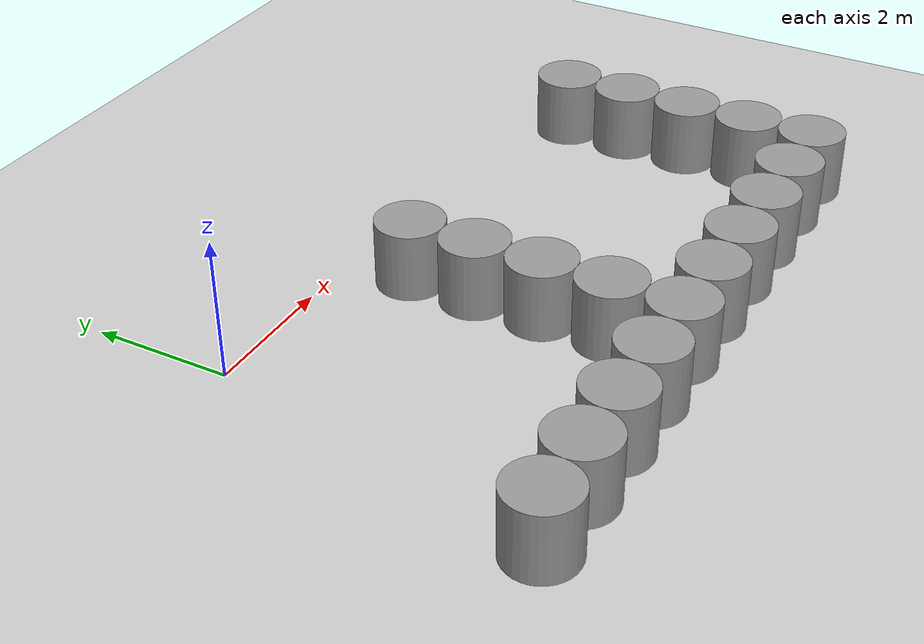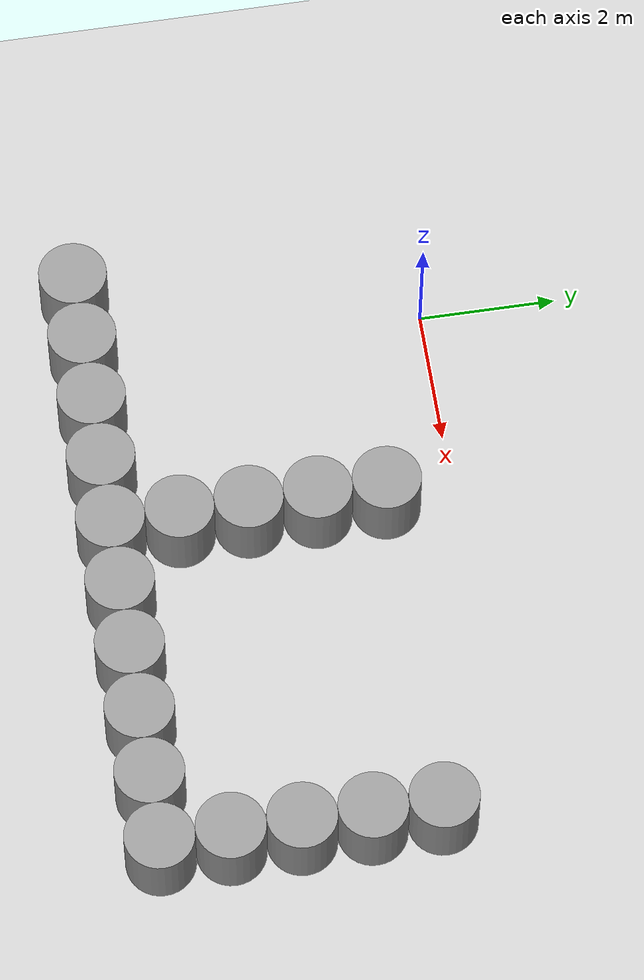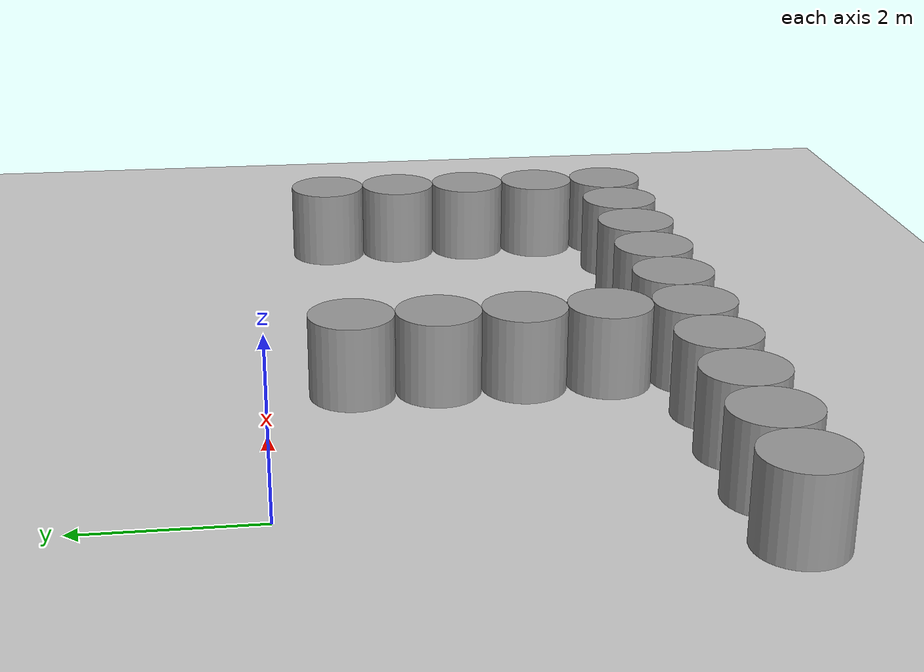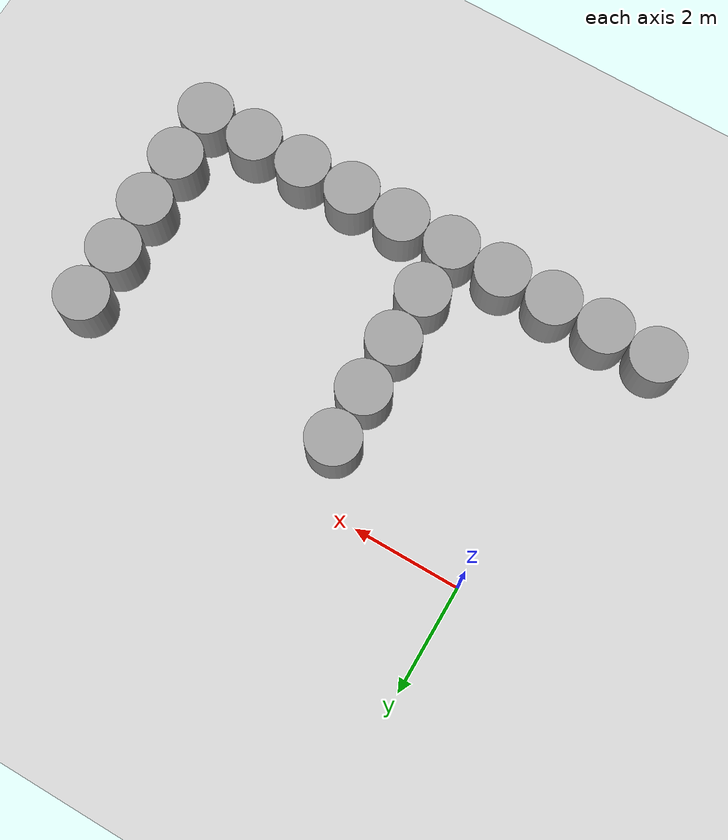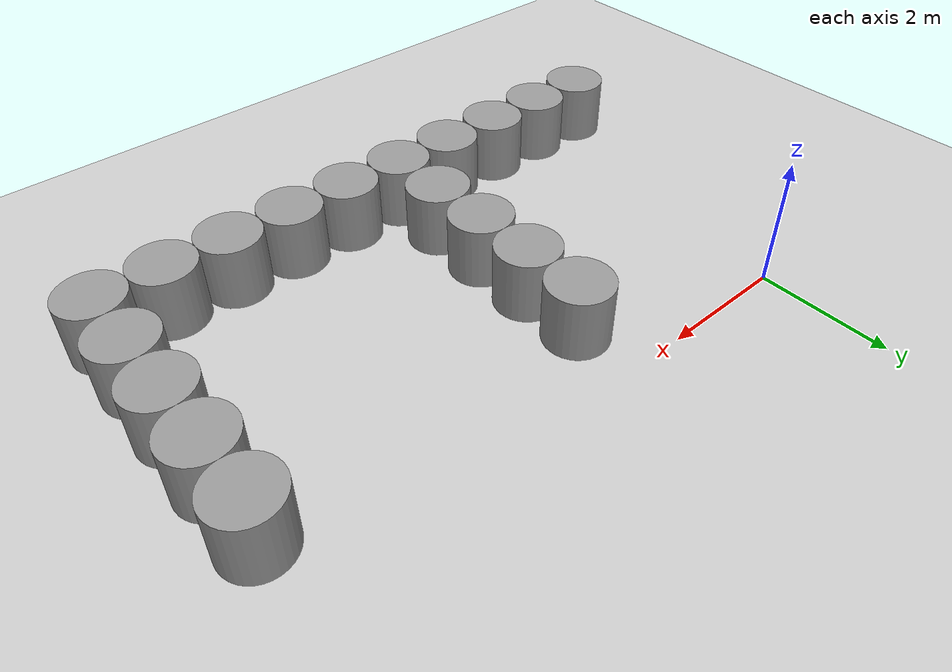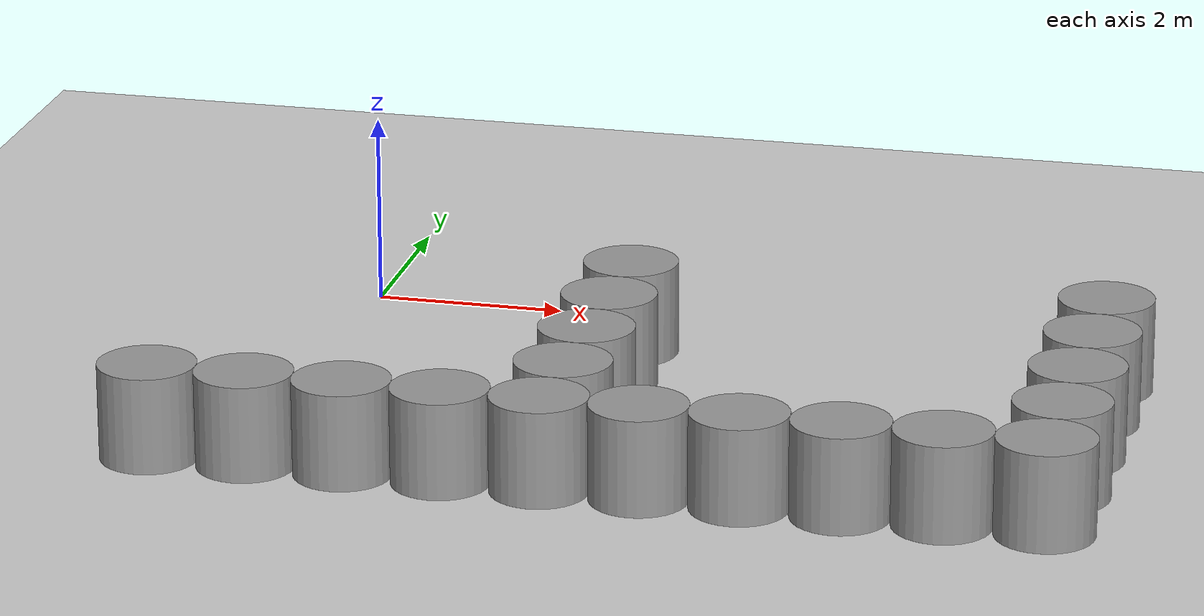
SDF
<sdf version="1.7">
 <world name="default">
  <model name="ground_plane">
   <static>1</static>
   <link name="link">
    <collision name="collision">
     <geometry><plane><normal>0 0 1</normal><size>100 100</size></plane></geometry>
     <surface>
      <contact><collide_bitmask>65535</collide_bitmask></contact>
      <friction><ode><mu>100</mu><mu2>50</mu2></ode></friction>
     </surface>
    </collision>
    <visual name="visual">
     <cast_shadows>0</cast_shadows>
     <geometry><plane><normal>0 0 1</normal><size>100 100</size></plane></geometry>
     <material>
      <script><uri>file://media/materials/scripts/gazebo.material</uri><name>Gazebo/Grey</name></script>
     </material>
    </visual>
   </link>
  </model>
  <model name="cylinder_1m_2_clone_12">
   <model name="cylinder_1m">
    <link name="link_0">
     <inertial>
      <mass>1</mass>
      <inertia>
       <ixx>0.166667</ixx>
       <ixy>0</ixy>
       <ixz>0</ixz>
       <iyy>0.166667</iyy>
       <iyz>0</iyz>
       <izz>0.166667</izz>
      </inertia>
     </inertial>
     <pose>0 0 -0 1.5708 -0 0</pose>
     <visual name="visual">
      <geometry>
       <mesh>
        <uri>/home/leesirius/workbench_ws/src/tb3_custom_worlds/custom_models/cylinder_1m.obj</uri>
        <scale>1 1 1</scale>
       </mesh>
      </geometry>
      <material>
       <lighting>1</lighting>
       <script><uri>file://media/materials/scripts/gazebo.material</uri><name>Gazebo/Grey</name></script>
       <shader type="pixel"/>
      </material>
     </visual>
     <collision name="collision">
      <geometry>
       <mesh>
        <uri>/home/leesirius/workbench_ws/src/tb3_custom_worlds/custom_models/cylinder_1m.obj</uri>
        <scale>1 1 1</scale>
       </mesh>
      </geometry>
      <surface>
       <friction>
        <ode><mu>1</mu><mu2>1</mu2><fdir1>0 0 0</fdir1><slip1>0</slip1><slip2>0</slip2></ode>
        <torsional>
         <coefficient>1</coefficient>
         <patch_radius>0</patch_radius>
         <surface_radius>0</surface_radius>
         <use_patch_radius>1</use_patch_radius>
         <ode><slip>0</slip></ode>
        </torsional>
       </friction>
       <bounce><restitution_coefficient>0</restitution_coefficient><threshold>1e+06</threshold></bounce>
       <contact>
        <collide_without_contact>0</collide_without_contact>
        <collide_without_contact_bitmask>1</collide_without_contact_bitmask>
        <collide_bitmask>1</collide_bitmask>
        <ode>
         <soft_cfm>0</soft_cfm>
         <soft_erp>0.2</soft_erp>
         <kp>1e+13</kp>
         <kd>1</kd>
         <max_vel>0.01</max_vel>
         <min_depth>0</min_depth>
        </ode>
        <bullet>
         <split_impulse>1</split_impulse>
         <split_impulse_penetration_threshold>-0.01</split_impulse_penetration_threshold>
         <soft_cfm>0</soft_cfm>
         <soft_erp>0.2</soft_erp>
         <kp>1e+13</kp>
         <kd>1</kd>
        </bullet>
       </contact>
      </surface>
     </collision>
    </link>
    <static>0</static>
    <pose>0 0 4e-06 0 -0 0</pose>
   </model>
   <static>1</static>
   <pose>-0.999966 -5.00001 0.499996 -5e-06 -3e-06 0.000138</pose>
  </model>
  <model name="cylinder_1m_2_clone_13">
   <model name="cylinder_1m">
    <link name="link_0">
     <inertial>
      <mass>1</mass>
      <inertia>
       <ixx>0.166667</ixx>
       <ixy>0</ixy>
       <ixz>0</ixz>
       <iyy>0.166667</iyy>
       <iyz>0</iyz>
       <izz>0.166667</izz>
      </inertia>
     </inertial>
     <pose>0 0 -0 1.5708 -0 0</pose>
     <visual name="visual">
      <geometry>
       <mesh>
        <uri>/home/leesirius/workbench_ws/src/tb3_custom_worlds/custom_models/cylinder_1m.obj</uri>
        <scale>1 1 1</scale>
       </mesh>
      </geometry>
      <material>
       <lighting>1</lighting>
       <script><uri>file://media/materials/scripts/gazebo.material</uri><name>Gazebo/Grey</name></script>
       <shader type="pixel"/>
      </material>
     </visual>
     <collision name="collision">
      <geometry>
       <mesh>
        <uri>/home/leesirius/workbench_ws/src/tb3_custom_worlds/custom_models/cylinder_1m.obj</uri>
        <scale>1 1 1</scale>
       </mesh>
      </geometry>
      <surface>
       <friction>
        <ode><mu>1</mu><mu2>1</mu2><fdir1>0 0 0</fdir1><slip1>0</slip1><slip2>0</slip2></ode>
        <torsional>
         <coefficient>1</coefficient>
         <patch_radius>0</patch_radius>
         <surface_radius>0</surface_radius>
         <use_patch_radius>1</use_patch_radius>
         <ode><slip>0</slip></ode>
        </torsional>
       </friction>
       <bounce><restitution_coefficient>0</restitution_coefficient><threshold>1e+06</threshold></bounce>
       <contact>
        <collide_without_contact>0</collide_without_contact>
        <collide_without_contact_bitmask>1</collide_without_contact_bitmask>
        <collide_bitmask>1</collide_bitmask>
        <ode>
         <soft_cfm>0</soft_cfm>
         <soft_erp>0.2</soft_erp>
         <kp>1e+13</kp>
         <kd>1</kd>
         <max_vel>0.01</max_vel>
         <min_depth>0</min_depth>
        </ode>
        <bullet>
         <split_impulse>1</split_impulse>
         <split_impulse_penetration_threshold>-0.01</split_impulse_penetration_threshold>
         <soft_cfm>0</soft_cfm>
         <soft_erp>0.2</soft_erp>
         <kp>1e+13</kp>
         <kd>1</kd>
        </bullet>
       </contact>
      </surface>
     </collision>
    </link>
    <static>0</static>
    <pose>0 0 4e-06 0 -0 0</pose>
   </model>
   <static>1</static>
   <pose>2.9e-05 -5.00001 0.499994 -4e-06 -4e-06 0.000131</pose>
  </model>
  <model name="cylinder_1m_2_clone_14">
   <model name="cylinder_1m">
    <link name="link_0">
     <inertial>
      <mass>1</mass>
      <inertia>
       <ixx>0.166667</ixx>
       <ixy>0</ixy>
       <ixz>0</ixz>
       <iyy>0.166667</iyy>
       <iyz>0</iyz>
       <izz>0.166667</izz>
      </inertia>
     </inertial>
     <pose>0 0 -0 1.5708 -0 0</pose>
     <visual name="visual">
      <geometry>
       <mesh>
        <uri>/home/leesirius/workbench_ws/src/tb3_custom_worlds/custom_models/cylinder_1m.obj</uri>
        <scale>1 1 1</scale>
       </mesh>
      </geometry>
      <material>
       <lighting>1</lighting>
       <script><uri>file://media/materials/scripts/gazebo.material</uri><name>Gazebo/Grey</name></script>
       <shader type="pixel"/>
      </material>
     </visual>
     <collision name="collision">
      <geometry>
       <mesh>
        <uri>/home/leesirius/workbench_ws/src/tb3_custom_worlds/custom_models/cylinder_1m.obj</uri>
        <scale>1 1 1</scale>
       </mesh>
      </geometry>
      <surface>
       <friction>
        <ode><mu>1</mu><mu2>1</mu2><fdir1>0 0 0</fdir1><slip1>0</slip1><slip2>0</slip2></ode>
        <torsional>
         <coefficient>1</coefficient>
         <patch_radius>0</patch_radius>
         <surface_radius>0</surface_radius>
         <use_patch_radius>1</use_patch_radius>
         <ode><slip>0</slip></ode>
        </torsional>
       </friction>
       <bounce><restitution_coefficient>0</restitution_coefficient><threshold>1e+06</threshold></bounce>
       <contact>
        <collide_without_contact>0</collide_without_contact>
        <collide_without_contact_bitmask>1</collide_without_contact_bitmask>
        <collide_bitmask>1</collide_bitmask>
        <ode>
         <soft_cfm>0</soft_cfm>
         <soft_erp>0.2</soft_erp>
         <kp>1e+13</kp>
         <kd>1</kd>
         <max_vel>0.01</max_vel>
         <min_depth>0</min_depth>
        </ode>
        <bullet>
         <split_impulse>1</split_impulse>
         <split_impulse_penetration_threshold>-0.01</split_impulse_penetration_threshold>
         <soft_cfm>0</soft_cfm>
         <soft_erp>0.2</soft_erp>
         <kp>1e+13</kp>
         <kd>1</kd>
        </bullet>
       </contact>
      </surface>
     </collision>
    </link>
    <static>0</static>
    <pose>0 0 4e-06 0 -0 0</pose>
   </model>
   <static>1</static>
   <pose>1.00003 -5.00001 0.499995 0 1e-06 0.000138</pose>
  </model>
  <model name="cylinder_1m_2_clone_15">
   <model name="cylinder_1m">
    <link name="link_0">
     <inertial>
      <mass>1</mass>
      <inertia>
       <ixx>0.166667</ixx>
       <ixy>0</ixy>
       <ixz>0</ixz>
       <iyy>0.166667</iyy>
       <iyz>0</iyz>
       <izz>0.166667</izz>
      </inertia>
     </inertial>
     <pose>0 0 -0 1.5708 -0 0</pose>
     <visual name="visual">
      <geometry>
       <mesh>
        <uri>/home/leesirius/workbench_ws/src/tb3_custom_worlds/custom_models/cylinder_1m.obj</uri>
        <scale>1 1 1</scale>
       </mesh>
      </geometry>
      <material>
       <lighting>1</lighting>
       <script><uri>file://media/materials/scripts/gazebo.material</uri><name>Gazebo/Grey</name></script>
       <shader type="pixel"/>
      </material>
     </visual>
     <collision name="collision">
      <geometry>
       <mesh>
        <uri>/home/leesirius/workbench_ws/src/tb3_custom_worlds/custom_models/cylinder_1m.obj</uri>
        <scale>1 1 1</scale>
       </mesh>
      </geometry>
      <surface>
       <friction>
        <ode><mu>1</mu><mu2>1</mu2><fdir1>0 0 0</fdir1><slip1>0</slip1><slip2>0</slip2></ode>
        <torsional>
         <coefficient>1</coefficient>
         <patch_radius>0</patch_radius>
         <surface_radius>0</surface_radius>
         <use_patch_radius>1</use_patch_radius>
         <ode><slip>0</slip></ode>
        </torsional>
       </friction>
       <bounce><restitution_coefficient>0</restitution_coefficient><threshold>1e+06</threshold></bounce>
       <contact>
        <collide_without_contact>0</collide_without_contact>
        <collide_without_contact_bitmask>1</collide_without_contact_bitmask>
        <collide_bitmask>1</collide_bitmask>
        <ode>
         <soft_cfm>0</soft_cfm>
         <soft_erp>0.2</soft_erp>
         <kp>1e+13</kp>
         <kd>1</kd>
         <max_vel>0.01</max_vel>
         <min_depth>0</min_depth>
        </ode>
        <bullet>
         <split_impulse>1</split_impulse>
         <split_impulse_penetration_threshold>-0.01</split_impulse_penetration_threshold>
         <soft_cfm>0</soft_cfm>
         <soft_erp>0.2</soft_erp>
         <kp>1e+13</kp>
         <kd>1</kd>
        </bullet>
       </contact>
      </surface>
     </collision>
    </link>
    <static>0</static>
    <pose>0 0 4e-06 0 -0 0</pose>
   </model>
   <static>1</static>
   <pose>2.00003 -5.00001 0.499995 0 1e-06 0.000138</pose>
  </model>
  <model name="cylinder_1m_2_clone_16">
   <model name="cylinder_1m">
    <link name="link_0">
     <inertial>
      <mass>1</mass>
      <inertia>
       <ixx>0.166667</ixx>
       <ixy>0</ixy>
       <ixz>0</ixz>
       <iyy>0.166667</iyy>
       <iyz>0</iyz>
       <izz>0.166667</izz>
      </inertia>
     </inertial>
     <pose>0 0 -0 1.5708 -0 0</pose>
     <visual name="visual">
      <geometry>
       <mesh>
        <uri>/home/leesirius/workbench_ws/src/tb3_custom_worlds/custom_models/cylinder_1m.obj</uri>
        <scale>1 1 1</scale>
       </mesh>
      </geometry>
      <material>
       <lighting>1</lighting>
       <script><uri>file://media/materials/scripts/gazebo.material</uri><name>Gazebo/Grey</name></script>
       <shader type="pixel"/>
      </material>
     </visual>
     <collision name="collision">
      <geometry>
       <mesh>
        <uri>/home/leesirius/workbench_ws/src/tb3_custom_worlds/custom_models/cylinder_1m.obj</uri>
        <scale>1 1 1</scale>
       </mesh>
      </geometry>
      <surface>
       <friction>
        <ode><mu>1</mu><mu2>1</mu2><fdir1>0 0 0</fdir1><slip1>0</slip1><slip2>0</slip2></ode>
        <torsional>
         <coefficient>1</coefficient>
         <patch_radius>0</patch_radius>
         <surface_radius>0</surface_radius>
         <use_patch_radius>1</use_patch_radius>
         <ode><slip>0</slip></ode>
        </torsional>
       </friction>
       <bounce><restitution_coefficient>0</restitution_coefficient><threshold>1e+06</threshold></bounce>
       <contact>
        <collide_without_contact>0</collide_without_contact>
        <collide_without_contact_bitmask>1</collide_without_contact_bitmask>
        <collide_bitmask>1</collide_bitmask>
        <ode>
         <soft_cfm>0</soft_cfm>
         <soft_erp>0.2</soft_erp>
         <kp>1e+13</kp>
         <kd>1</kd>
         <max_vel>0.01</max_vel>
         <min_depth>0</min_depth>
        </ode>
        <bullet>
         <split_impulse>1</split_impulse>
         <split_impulse_penetration_threshold>-0.01</split_impulse_penetration_threshold>
         <soft_cfm>0</soft_cfm>
         <soft_erp>0.2</soft_erp>
         <kp>1e+13</kp>
         <kd>1</kd>
        </bullet>
       </contact>
      </surface>
     </collision>
    </link>
    <static>0</static>
    <pose>0 0 4e-06 0 -0 0</pose>
   </model>
   <static>1</static>
   <pose>3.00003 -5.00001 0.499995 0 1e-06 0.000138</pose>
  </model>
  <model name="cylinder_1m_2_clone_17">
   <model name="cylinder_1m">
    <link name="link_0">
     <inertial>
      <mass>1</mass>
      <inertia>
       <ixx>0.166667</ixx>
       <ixy>0</ixy>
       <ixz>0</ixz>
       <iyy>0.166667</iyy>
       <iyz>0</iyz>
       <izz>0.166667</izz>
      </inertia>
     </inertial>
     <pose>0 0 -0 1.5708 -0 0</pose>
     <visual name="visual">
      <geometry>
       <mesh>
        <uri>/home/leesirius/workbench_ws/src/tb3_custom_worlds/custom_models/cylinder_1m.obj</uri>
        <scale>1 1 1</scale>
       </mesh>
      </geometry>
      <material>
       <lighting>1</lighting>
       <script><uri>file://media/materials/scripts/gazebo.material</uri><name>Gazebo/Grey</name></script>
       <shader type="pixel"/>
      </material>
     </visual>
     <collision name="collision">
      <geometry>
       <mesh>
        <uri>/home/leesirius/workbench_ws/src/tb3_custom_worlds/custom_models/cylinder_1m.obj</uri>
        <scale>1 1 1</scale>
       </mesh>
      </geometry>
      <surface>
       <friction>
        <ode><mu>1</mu><mu2>1</mu2><fdir1>0 0 0</fdir1><slip1>0</slip1><slip2>0</slip2></ode>
        <torsional>
         <coefficient>1</coefficient>
         <patch_radius>0</patch_radius>
         <surface_radius>0</surface_radius>
         <use_patch_radius>1</use_patch_radius>
         <ode><slip>0</slip></ode>
        </torsional>
       </friction>
       <bounce><restitution_coefficient>0</restitution_coefficient><threshold>1e+06</threshold></bounce>
       <contact>
        <collide_without_contact>0</collide_without_contact>
        <collide_without_contact_bitmask>1</collide_without_contact_bitmask>
        <collide_bitmask>1</collide_bitmask>
        <ode>
         <soft_cfm>0</soft_cfm>
         <soft_erp>0.2</soft_erp>
         <kp>1e+13</kp>
         <kd>1</kd>
         <max_vel>0.01</max_vel>
         <min_depth>0</min_depth>
        </ode>
        <bullet>
         <split_impulse>1</split_impulse>
         <split_impulse_penetration_threshold>-0.01</split_impulse_penetration_threshold>
         <soft_cfm>0</soft_cfm>
         <soft_erp>0.2</soft_erp>
         <kp>1e+13</kp>
         <kd>1</kd>
        </bullet>
       </contact>
      </surface>
     </collision>
    </link>
    <static>0</static>
    <pose>0 0 4e-06 0 -0 0</pose>
   </model>
   <static>1</static>
   <pose>4.00003 -5.00001 0.499995 0 1e-06 0.000138</pose>
  </model>
  <model name="cylinder_1m_2_clone_18">
   <model name="cylinder_1m">
    <link name="link_0">
     <inertial>
      <mass>1</mass>
      <inertia>
       <ixx>0.166667</ixx>
       <ixy>0</ixy>
       <ixz>0</ixz>
       <iyy>0.166667</iyy>
       <iyz>0</iyz>
       <izz>0.166667</izz>
      </inertia>
     </inertial>
     <pose>0 0 -0 1.5708 -0 0</pose>
     <visual name="visual">
      <geometry>
       <mesh>
        <uri>/home/leesirius/workbench_ws/src/tb3_custom_worlds/custom_models/cylinder_1m.obj</uri>
        <scale>1 1 1</scale>
       </mesh>
      </geometry>
      <material>
       <lighting>1</lighting>
       <script><uri>file://media/materials/scripts/gazebo.material</uri><name>Gazebo/Grey</name></script>
       <shader type="pixel"/>
      </material>
     </visual>
     <collision name="collision">
      <geometry>
       <mesh>
        <uri>/home/leesirius/workbench_ws/src/tb3_custom_worlds/custom_models/cylinder_1m.obj</uri>
        <scale>1 1 1</scale>
       </mesh>
      </geometry>
      <surface>
       <friction>
        <ode><mu>1</mu><mu2>1</mu2><fdir1>0 0 0</fdir1><slip1>0</slip1><slip2>0</slip2></ode>
        <torsional>
         <coefficient>1</coefficient>
         <patch_radius>0</patch_radius>
         <surface_radius>0</surface_radius>
         <use_patch_radius>1</use_patch_radius>
         <ode><slip>0</slip></ode>
        </torsional>
       </friction>
       <bounce><restitution_coefficient>0</restitution_coefficient><threshold>1e+06</threshold></bounce>
       <contact>
        <collide_without_contact>0</collide_without_contact>
        <collide_without_contact_bitmask>1</collide_without_contact_bitmask>
        <collide_bitmask>1</collide_bitmask>
        <ode>
         <soft_cfm>0</soft_cfm>
         <soft_erp>0.2</soft_erp>
         <kp>1e+13</kp>
         <kd>1</kd>
         <max_vel>0.01</max_vel>
         <min_depth>0</min_depth>
        </ode>
        <bullet>
         <split_impulse>1</split_impulse>
         <split_impulse_penetration_threshold>-0.01</split_impulse_penetration_threshold>
         <soft_cfm>0</soft_cfm>
         <soft_erp>0.2</soft_erp>
         <kp>1e+13</kp>
         <kd>1</kd>
        </bullet>
       </contact>
      </surface>
     </collision>
    </link>
    <static>0</static>
    <pose>0 0 4e-06 0 -0 0</pose>
   </model>
   <static>1</static>
   <pose>5.00003 -5.00001 0.499995 0 1e-06 0.000138</pose>
  </model>
  <model name="cylinder_1m_2_clone_19">
   <model name="cylinder_1m">
    <link name="link_0">
     <inertial>
      <mass>1</mass>
      <inertia>
       <ixx>0.166667</ixx>
       <ixy>0</ixy>
       <ixz>0</ixz>
       <iyy>0.166667</iyy>
       <iyz>0</iyz>
       <izz>0.166667</izz>
      </inertia>
     </inertial>
     <pose>0 0 -0 1.5708 -0 0</pose>
     <visual name="visual">
      <geometry>
       <mesh>
        <uri>/home/leesirius/workbench_ws/src/tb3_custom_worlds/custom_models/cylinder_1m.obj</uri>
        <scale>1 1 1</scale>
       </mesh>
      </geometry>
      <material>
       <lighting>1</lighting>
       <script><uri>file://media/materials/scripts/gazebo.material</uri><name>Gazebo/Grey</name></script>
       <shader type="pixel"/>
      </material>
     </visual>
     <collision name="collision">
      <geometry>
       <mesh>
        <uri>/home/leesirius/workbench_ws/src/tb3_custom_worlds/custom_models/cylinder_1m.obj</uri>
        <scale>1 1 1</scale>
       </mesh>
      </geometry>
      <surface>
       <friction>
        <ode><mu>1</mu><mu2>1</mu2><fdir1>0 0 0</fdir1><slip1>0</slip1><slip2>0</slip2></ode>
        <torsional>
         <coefficient>1</coefficient>
         <patch_radius>0</patch_radius>
         <surface_radius>0</surface_radius>
         <use_patch_radius>1</use_patch_radius>
         <ode><slip>0</slip></ode>
        </torsional>
       </friction>
       <bounce><restitution_coefficient>0</restitution_coefficient><threshold>1e+06</threshold></bounce>
       <contact>
        <collide_without_contact>0</collide_without_contact>
        <collide_without_contact_bitmask>1</collide_without_contact_bitmask>
        <collide_bitmask>1</collide_bitmask>
        <ode>
         <soft_cfm>0</soft_cfm>
         <soft_erp>0.2</soft_erp>
         <kp>1e+13</kp>
         <kd>1</kd>
         <max_vel>0.01</max_vel>
         <min_depth>0</min_depth>
        </ode>
        <bullet>
         <split_impulse>1</split_impulse>
         <split_impulse_penetration_threshold>-0.01</split_impulse_penetration_threshold>
         <soft_cfm>0</soft_cfm>
         <soft_erp>0.2</soft_erp>
         <kp>1e+13</kp>
         <kd>1</kd>
        </bullet>
       </contact>
      </surface>
     </collision>
    </link>
    <static>0</static>
    <pose>0 0 4e-06 0 -0 0</pose>
   </model>
   <static>1</static>
   <pose>3.00002 -4.00001 0.499993 -5e-06 -6e-06 0.000203</pose>
  </model>
  <model name="cylinder_1m_2_clone_20">
   <model name="cylinder_1m">
    <link name="link_0">
     <inertial>
      <mass>1</mass>
      <inertia>
       <ixx>0.166667</ixx>
       <ixy>0</ixy>
       <ixz>0</ixz>
       <iyy>0.166667</iyy>
       <iyz>0</iyz>
       <izz>0.166667</izz>
      </inertia>
     </inertial>
     <pose>0 0 -0 1.5708 -0 0</pose>
     <visual name="visual">
      <geometry>
       <mesh>
        <uri>/home/leesirius/workbench_ws/src/tb3_custom_worlds/custom_models/cylinder_1m.obj</uri>
        <scale>1 1 1</scale>
       </mesh>
      </geometry>
      <material>
       <lighting>1</lighting>
       <script><uri>file://media/materials/scripts/gazebo.material</uri><name>Gazebo/Grey</name></script>
       <shader type="pixel"/>
      </material>
     </visual>
     <collision name="collision">
      <geometry>
       <mesh>
        <uri>/home/leesirius/workbench_ws/src/tb3_custom_worlds/custom_models/cylinder_1m.obj</uri>
        <scale>1 1 1</scale>
       </mesh>
      </geometry>
      <surface>
       <friction>
        <ode><mu>1</mu><mu2>1</mu2><fdir1>0 0 0</fdir1><slip1>0</slip1><slip2>0</slip2></ode>
        <torsional>
         <coefficient>1</coefficient>
         <patch_radius>0</patch_radius>
         <surface_radius>0</surface_radius>
         <use_patch_radius>1</use_patch_radius>
         <ode><slip>0</slip></ode>
        </torsional>
       </friction>
       <bounce><restitution_coefficient>0</restitution_coefficient><threshold>1e+06</threshold></bounce>
       <contact>
        <collide_without_contact>0</collide_without_contact>
        <collide_without_contact_bitmask>1</collide_without_contact_bitmask>
        <collide_bitmask>1</collide_bitmask>
        <ode>
         <soft_cfm>0</soft_cfm>
         <soft_erp>0.2</soft_erp>
         <kp>1e+13</kp>
         <kd>1</kd>
         <max_vel>0.01</max_vel>
         <min_depth>0</min_depth>
        </ode>
        <bullet>
         <split_impulse>1</split_impulse>
         <split_impulse_penetration_threshold>-0.01</split_impulse_penetration_threshold>
         <soft_cfm>0</soft_cfm>
         <soft_erp>0.2</soft_erp>
         <kp>1e+13</kp>
         <kd>1</kd>
        </bullet>
       </contact>
      </surface>
     </collision>
    </link>
    <static>0</static>
    <pose>0 0 4e-06 0 -0 0</pose>
   </model>
   <static>1</static>
   <pose>3.00002 -3.00002 0.499995 -4e-06 -3e-06 0.000202</pose>
  </model>
  <model name="cylinder_1m_2_clone_21">
   <model name="cylinder_1m">
    <link name="link_0">
     <inertial>
      <mass>1</mass>
      <inertia>
       <ixx>0.166667</ixx>
       <ixy>0</ixy>
       <ixz>0</ixz>
       <iyy>0.166667</iyy>
       <iyz>0</iyz>
       <izz>0.166667</izz>
      </inertia>
     </inertial>
     <pose>0 0 -0 1.5708 -0 0</pose>
     <visual name="visual">
      <geometry>
       <mesh>
        <uri>/home/leesirius/workbench_ws/src/tb3_custom_worlds/custom_models/cylinder_1m.obj</uri>
        <scale>1 1 1</scale>
       </mesh>
      </geometry>
      <material>
       <lighting>1</lighting>
       <script><uri>file://media/materials/scripts/gazebo.material</uri><name>Gazebo/Grey</name></script>
       <shader type="pixel"/>
      </material>
     </visual>
     <collision name="collision">
      <geometry>
       <mesh>
        <uri>/home/leesirius/workbench_ws/src/tb3_custom_worlds/custom_models/cylinder_1m.obj</uri>
        <scale>1 1 1</scale>
       </mesh>
      </geometry>
      <surface>
       <friction>
        <ode><mu>1</mu><mu2>1</mu2><fdir1>0 0 0</fdir1><slip1>0</slip1><slip2>0</slip2></ode>
        <torsional>
         <coefficient>1</coefficient>
         <patch_radius>0</patch_radius>
         <surface_radius>0</surface_radius>
         <use_patch_radius>1</use_patch_radius>
         <ode><slip>0</slip></ode>
        </torsional>
       </friction>
       <bounce><restitution_coefficient>0</restitution_coefficient><threshold>1e+06</threshold></bounce>
       <contact>
        <collide_without_contact>0</collide_without_contact>
        <collide_without_contact_bitmask>1</collide_without_contact_bitmask>
        <collide_bitmask>1</collide_bitmask>
        <ode>
         <soft_cfm>0</soft_cfm>
         <soft_erp>0.2</soft_erp>
         <kp>1e+13</kp>
         <kd>1</kd>
         <max_vel>0.01</max_vel>
         <min_depth>0</min_depth>
        </ode>
        <bullet>
         <split_impulse>1</split_impulse>
         <split_impulse_penetration_threshold>-0.01</split_impulse_penetration_threshold>
         <soft_cfm>0</soft_cfm>
         <soft_erp>0.2</soft_erp>
         <kp>1e+13</kp>
         <kd>1</kd>
        </bullet>
       </contact>
      </surface>
     </collision>
    </link>
    <static>0</static>
    <pose>0 0 4e-06 0 -0 0</pose>
   </model>
   <static>1</static>
   <pose>3.00002 -2.00001 0.499995 -1e-06 1e-06 0.000207</pose>
  </model>
  <model name="cylinder_1m_2_clone_22">
   <model name="cylinder_1m">
    <link name="link_0">
     <inertial>
      <mass>1</mass>
      <inertia>
       <ixx>0.166667</ixx>
       <ixy>0</ixy>
       <ixz>0</ixz>
       <iyy>0.166667</iyy>
       <iyz>0</iyz>
       <izz>0.166667</izz>
      </inertia>
     </inertial>
     <pose>0 0 -0 1.5708 -0 0</pose>
     <visual name="visual">
      <geometry>
       <mesh>
        <uri>/home/leesirius/workbench_ws/src/tb3_custom_worlds/custom_models/cylinder_1m.obj</uri>
        <scale>1 1 1</scale>
       </mesh>
      </geometry>
      <material>
       <lighting>1</lighting>
       <script><uri>file://media/materials/scripts/gazebo.material</uri><name>Gazebo/Grey</name></script>
       <shader type="pixel"/>
      </material>
     </visual>
     <collision name="collision">
      <geometry>
       <mesh>
        <uri>/home/leesirius/workbench_ws/src/tb3_custom_worlds/custom_models/cylinder_1m.obj</uri>
        <scale>1 1 1</scale>
       </mesh>
      </geometry>
      <surface>
       <friction>
        <ode><mu>1</mu><mu2>1</mu2><fdir1>0 0 0</fdir1><slip1>0</slip1><slip2>0</slip2></ode>
        <torsional>
         <coefficient>1</coefficient>
         <patch_radius>0</patch_radius>
         <surface_radius>0</surface_radius>
         <use_patch_radius>1</use_patch_radius>
         <ode><slip>0</slip></ode>
        </torsional>
       </friction>
       <bounce><restitution_coefficient>0</restitution_coefficient><threshold>1e+06</threshold></bounce>
       <contact>
        <collide_without_contact>0</collide_without_contact>
        <collide_without_contact_bitmask>1</collide_without_contact_bitmask>
        <collide_bitmask>1</collide_bitmask>
        <ode>
         <soft_cfm>0</soft_cfm>
         <soft_erp>0.2</soft_erp>
         <kp>1e+13</kp>
         <kd>1</kd>
         <max_vel>0.01</max_vel>
         <min_depth>0</min_depth>
        </ode>
        <bullet>
         <split_impulse>1</split_impulse>
         <split_impulse_penetration_threshold>-0.01</split_impulse_penetration_threshold>
         <soft_cfm>0</soft_cfm>
         <soft_erp>0.2</soft_erp>
         <kp>1e+13</kp>
         <kd>1</kd>
        </bullet>
       </contact>
      </surface>
     </collision>
    </link>
    <static>0</static>
    <pose>0 0 4e-06 0 -0 0</pose>
   </model>
   <static>1</static>
   <pose>3.00002 -1.00001 0.499993 -1e-05 3e-06 0.000202</pose>
  </model>
  <model name="cylinder_1m_2_clone_39">
   <model name="cylinder_1m">
    <link name="link_0">
     <inertial>
      <mass>1</mass>
      <inertia>
       <ixx>0.166667</ixx>
       <ixy>0</ixy>
       <ixz>0</ixz>
       <iyy>0.166667</iyy>
       <iyz>0</iyz>
       <izz>0.166667</izz>
      </inertia>
     </inertial>
     <pose>0 0 -0 1.5708 -0 0</pose>
     <visual name="visual">
      <geometry>
       <mesh>
        <uri>/home/leesirius/workbench_ws/src/tb3_custom_worlds/custom_models/cylinder_1m.obj</uri>
        <scale>1 1 1</scale>
       </mesh>
      </geometry>
      <material>
       <lighting>1</lighting>
       <script><uri>file://media/materials/scripts/gazebo.material</uri><name>Gazebo/Grey</name></script>
       <shader type="pixel"/>
      </material>
     </visual>
     <collision name="collision">
      <geometry>
       <mesh>
        <uri>/home/leesirius/workbench_ws/src/tb3_custom_worlds/custom_models/cylinder_1m.obj</uri>
        <scale>1 1 1</scale>
       </mesh>
      </geometry>
      <surface>
       <friction>
        <ode><mu>1</mu><mu2>1</mu2><fdir1>0 0 0</fdir1><slip1>0</slip1><slip2>0</slip2></ode>
        <torsional>
         <coefficient>1</coefficient>
         <patch_radius>0</patch_radius>
         <surface_radius>0</surface_radius>
         <use_patch_radius>1</use_patch_radius>
         <ode><slip>0</slip></ode>
        </torsional>
       </friction>
       <bounce><restitution_coefficient>0</restitution_coefficient><threshold>1e+06</threshold></bounce>
       <contact>
        <collide_without_contact>0</collide_without_contact>
        <collide_without_contact_bitmask>1</collide_without_contact_bitmask>
        <collide_bitmask>1</collide_bitmask>
        <ode>
         <soft_cfm>0</soft_cfm>
         <soft_erp>0.2</soft_erp>
         <kp>1e+13</kp>
         <kd>1</kd>
         <max_vel>0.01</max_vel>
         <min_depth>0</min_depth>
        </ode>
        <bullet>
         <split_impulse>1</split_impulse>
         <split_impulse_penetration_threshold>-0.01</split_impulse_penetration_threshold>
         <soft_cfm>0</soft_cfm>
         <soft_erp>0.2</soft_erp>
         <kp>1e+13</kp>
         <kd>1</kd>
        </bullet>
       </contact>
      </surface>
     </collision>
    </link>
    <static>0</static>
    <pose>0 0 4e-06 0 -0 0</pose>
   </model>
   <static>1</static>
   <pose>8.00002 -1.00001 0.499995 -5e-06 -2e-06 0.00014</pose>
  </model>
  <model name="cylinder_1m_2_clone_38">
   <model name="cylinder_1m">
    <link name="link_0">
     <inertial>
      <mass>1</mass>
      <inertia>
       <ixx>0.166667</ixx>
       <ixy>0</ixy>
       <ixz>0</ixz>
       <iyy>0.166667</iyy>
       <iyz>0</iyz>
       <izz>0.166667</izz>
      </inertia>
     </inertial>
     <pose>0 0 -0 1.5708 -0 0</pose>
     <visual name="visual">
      <geometry>
       <mesh>
        <uri>/home/leesirius/workbench_ws/src/tb3_custom_worlds/custom_models/cylinder_1m.obj</uri>
        <scale>1 1 1</scale>
       </mesh>
      </geometry>
      <material>
       <lighting>1</lighting>
       <script><uri>file://media/materials/scripts/gazebo.material</uri><name>Gazebo/Grey</name></script>
       <shader type="pixel"/>
      </material>
     </visual>
     <collision name="collision">
      <geometry>
       <mesh>
        <uri>/home/leesirius/workbench_ws/src/tb3_custom_worlds/custom_models/cylinder_1m.obj</uri>
        <scale>1 1 1</scale>
       </mesh>
      </geometry>
      <surface>
       <friction>
        <ode><mu>1</mu><mu2>1</mu2><fdir1>0 0 0</fdir1><slip1>0</slip1><slip2>0</slip2></ode>
        <torsional>
         <coefficient>1</coefficient>
         <patch_radius>0</patch_radius>
         <surface_radius>0</surface_radius>
         <use_patch_radius>1</use_patch_radius>
         <ode><slip>0</slip></ode>
        </torsional>
       </friction>
       <bounce><restitution_coefficient>0</restitution_coefficient><threshold>1e+06</threshold></bounce>
       <contact>
        <collide_without_contact>0</collide_without_contact>
        <collide_without_contact_bitmask>1</collide_without_contact_bitmask>
        <collide_bitmask>1</collide_bitmask>
        <ode>
         <soft_cfm>0</soft_cfm>
         <soft_erp>0.2</soft_erp>
         <kp>1e+13</kp>
         <kd>1</kd>
         <max_vel>0.01</max_vel>
         <min_depth>0</min_depth>
        </ode>
        <bullet>
         <split_impulse>1</split_impulse>
         <split_impulse_penetration_threshold>-0.01</split_impulse_penetration_threshold>
         <soft_cfm>0</soft_cfm>
         <soft_erp>0.2</soft_erp>
         <kp>1e+13</kp>
         <kd>1</kd>
        </bullet>
       </contact>
      </surface>
     </collision>
    </link>
    <static>0</static>
    <pose>0 0 4e-06 0 -0 0</pose>
   </model>
   <static>1</static>
   <pose>8.00002 -2.00001 0.499995 -5e-06 -2e-06 0.00014</pose>
  </model>
  <model name="cylinder_1m_2_clone_40">
   <model name="cylinder_1m">
    <link name="link_0">
     <inertial>
      <mass>1</mass>
      <inertia>
       <ixx>0.166667</ixx>
       <ixy>0</ixy>
       <ixz>0</ixz>
       <iyy>0.166667</iyy>
       <iyz>0</iyz>
       <izz>0.166667</izz>
      </inertia>
     </inertial>
     <pose>0 0 -0 1.5708 -0 0</pose>
     <visual name="visual">
      <geometry>
       <mesh>
        <uri>/home/leesirius/workbench_ws/src/tb3_custom_worlds/custom_models/cylinder_1m.obj</uri>
        <scale>1 1 1</scale>
       </mesh>
      </geometry>
      <material>
       <lighting>1</lighting>
       <script><uri>file://media/materials/scripts/gazebo.material</uri><name>Gazebo/Grey</name></script>
       <shader type="pixel"/>
      </material>
     </visual>
     <collision name="collision">
      <geometry>
       <mesh>
        <uri>/home/leesirius/workbench_ws/src/tb3_custom_worlds/custom_models/cylinder_1m.obj</uri>
        <scale>1 1 1</scale>
       </mesh>
      </geometry>
      <surface>
       <friction>
        <ode><mu>1</mu><mu2>1</mu2><fdir1>0 0 0</fdir1><slip1>0</slip1><slip2>0</slip2></ode>
        <torsional>
         <coefficient>1</coefficient>
         <patch_radius>0</patch_radius>
         <surface_radius>0</surface_radius>
         <use_patch_radius>1</use_patch_radius>
         <ode><slip>0</slip></ode>
        </torsional>
       </friction>
       <bounce><restitution_coefficient>0</restitution_coefficient><threshold>1e+06</threshold></bounce>
       <contact>
        <collide_without_contact>0</collide_without_contact>
        <collide_without_contact_bitmask>1</collide_without_contact_bitmask>
        <collide_bitmask>1</collide_bitmask>
        <ode>
         <soft_cfm>0</soft_cfm>
         <soft_erp>0.2</soft_erp>
         <kp>1e+13</kp>
         <kd>1</kd>
         <max_vel>0.01</max_vel>
         <min_depth>0</min_depth>
        </ode>
        <bullet>
         <split_impulse>1</split_impulse>
         <split_impulse_penetration_threshold>-0.01</split_impulse_penetration_threshold>
         <soft_cfm>0</soft_cfm>
         <soft_erp>0.2</soft_erp>
         <kp>1e+13</kp>
         <kd>1</kd>
        </bullet>
       </contact>
      </surface>
     </collision>
    </link>
    <static>0</static>
    <pose>0 0 4e-06 0 -0 0</pose>
   </model>
   <static>1</static>
   <pose>8.00002 -3.00001 0.499995 -5e-06 -2e-06 0.00014</pose>
  </model>
  <model name="cylinder_1m_2_clone_41">
   <model name="cylinder_1m">
    <link name="link_0">
     <inertial>
      <mass>1</mass>
      <inertia>
       <ixx>0.166667</ixx>
       <ixy>0</ixy>
       <ixz>0</ixz>
       <iyy>0.166667</iyy>
       <iyz>0</iyz>
       <izz>0.166667</izz>
      </inertia>
     </inertial>
     <pose>0 0 -0 1.5708 -0 0</pose>
     <visual name="visual">
      <geometry>
       <mesh>
        <uri>/home/leesirius/workbench_ws/src/tb3_custom_worlds/custom_models/cylinder_1m.obj</uri>
        <scale>1 1 1</scale>
       </mesh>
      </geometry>
      <material>
       <lighting>1</lighting>
       <script><uri>file://media/materials/scripts/gazebo.material</uri><name>Gazebo/Grey</name></script>
       <shader type="pixel"/>
      </material>
     </visual>
     <collision name="collision">
      <geometry>
       <mesh>
        <uri>/home/leesirius/workbench_ws/src/tb3_custom_worlds/custom_models/cylinder_1m.obj</uri>
        <scale>1 1 1</scale>
       </mesh>
      </geometry>
      <surface>
       <friction>
        <ode><mu>1</mu><mu2>1</mu2><fdir1>0 0 0</fdir1><slip1>0</slip1><slip2>0</slip2></ode>
        <torsional>
         <coefficient>1</coefficient>
         <patch_radius>0</patch_radius>
         <surface_radius>0</surface_radius>
         <use_patch_radius>1</use_patch_radius>
         <ode><slip>0</slip></ode>
        </torsional>
       </friction>
       <bounce><restitution_coefficient>0</restitution_coefficient><threshold>1e+06</threshold></bounce>
       <contact>
        <collide_without_contact>0</collide_without_contact>
        <collide_without_contact_bitmask>1</collide_without_contact_bitmask>
        <collide_bitmask>1</collide_bitmask>
        <ode>
         <soft_cfm>0</soft_cfm>
         <soft_erp>0.2</soft_erp>
         <kp>1e+13</kp>
         <kd>1</kd>
         <max_vel>0.01</max_vel>
         <min_depth>0</min_depth>
        </ode>
        <bullet>
         <split_impulse>1</split_impulse>
         <split_impulse_penetration_threshold>-0.01</split_impulse_penetration_threshold>
         <soft_cfm>0</soft_cfm>
         <soft_erp>0.2</soft_erp>
         <kp>1e+13</kp>
         <kd>1</kd>
        </bullet>
       </contact>
      </surface>
     </collision>
    </link>
    <static>0</static>
    <pose>0 0 4e-06 0 -0 0</pose>
   </model>
   <static>1</static>
   <pose>8.00002 -4.00001 0.499995 -5e-06 -2e-06 0.00014</pose>
  </model>
  <model name="cylinder_1m_2_clone_42">
   <model name="cylinder_1m">
    <link name="link_0">
     <inertial>
      <mass>1</mass>
      <inertia>
       <ixx>0.166667</ixx>
       <ixy>0</ixy>
       <ixz>0</ixz>
       <iyy>0.166667</iyy>
       <iyz>0</iyz>
       <izz>0.166667</izz>
      </inertia>
     </inertial>
     <pose>0 0 -0 1.5708 -0 0</pose>
     <visual name="visual">
      <geometry>
       <mesh>
        <uri>/home/leesirius/workbench_ws/src/tb3_custom_worlds/custom_models/cylinder_1m.obj</uri>
        <scale>1 1 1</scale>
       </mesh>
      </geometry>
      <material>
       <lighting>1</lighting>
       <script><uri>file://media/materials/scripts/gazebo.material</uri><name>Gazebo/Grey</name></script>
       <shader type="pixel"/>
      </material>
     </visual>
     <collision name="collision">
      <geometry>
       <mesh>
        <uri>/home/leesirius/workbench_ws/src/tb3_custom_worlds/custom_models/cylinder_1m.obj</uri>
        <scale>1 1 1</scale>
       </mesh>
      </geometry>
      <surface>
       <friction>
        <ode><mu>1</mu><mu2>1</mu2><fdir1>0 0 0</fdir1><slip1>0</slip1><slip2>0</slip2></ode>
        <torsional>
         <coefficient>1</coefficient>
         <patch_radius>0</patch_radius>
         <surface_radius>0</surface_radius>
         <use_patch_radius>1</use_patch_radius>
         <ode><slip>0</slip></ode>
        </torsional>
       </friction>
       <bounce><restitution_coefficient>0</restitution_coefficient><threshold>1e+06</threshold></bounce>
       <contact>
        <collide_without_contact>0</collide_without_contact>
        <collide_without_contact_bitmask>1</collide_without_contact_bitmask>
        <collide_bitmask>1</collide_bitmask>
        <ode>
         <soft_cfm>0</soft_cfm>
         <soft_erp>0.2</soft_erp>
         <kp>1e+13</kp>
         <kd>1</kd>
         <max_vel>0.01</max_vel>
         <min_depth>0</min_depth>
        </ode>
        <bullet>
         <split_impulse>1</split_impulse>
         <split_impulse_penetration_threshold>-0.01</split_impulse_penetration_threshold>
         <soft_cfm>0</soft_cfm>
         <soft_erp>0.2</soft_erp>
         <kp>1e+13</kp>
         <kd>1</kd>
        </bullet>
       </contact>
      </surface>
     </collision>
    </link>
    <static>0</static>
    <pose>0 0 4e-06 0 -0 0</pose>
   </model>
   <static>1</static>
   <pose>8.00002 -5.00001 0.499995 -5e-06 -2e-06 0.00014</pose>
  </model>
  <model name="cylinder_1m_2_clone_43">
   <model name="cylinder_1m">
    <link name="link_0">
     <inertial>
      <mass>1</mass>
      <inertia>
       <ixx>0.166667</ixx>
       <ixy>0</ixy>
       <ixz>0</ixz>
       <iyy>0.166667</iyy>
       <iyz>0</iyz>
       <izz>0.166667</izz>
      </inertia>
     </inertial>
     <pose>0 0 -0 1.5708 -0 0</pose>
     <visual name="visual">
      <geometry>
       <mesh>
        <uri>/home/leesirius/workbench_ws/src/tb3_custom_worlds/custom_models/cylinder_1m.obj</uri>
        <scale>1 1 1</scale>
       </mesh>
      </geometry>
      <material>
       <lighting>1</lighting>
       <script><uri>file://media/materials/scripts/gazebo.material</uri><name>Gazebo/Grey</name></script>
       <shader type="pixel"/>
      </material>
     </visual>
     <collision name="collision">
      <geometry>
       <mesh>
        <uri>/home/leesirius/workbench_ws/src/tb3_custom_worlds/custom_models/cylinder_1m.obj</uri>
        <scale>1 1 1</scale>
       </mesh>
      </geometry>
      <surface>
       <friction>
        <ode><mu>1</mu><mu2>1</mu2><fdir1>0 0 0</fdir1><slip1>0</slip1><slip2>0</slip2></ode>
        <torsional>
         <coefficient>1</coefficient>
         <patch_radius>0</patch_radius>
         <surface_radius>0</surface_radius>
         <use_patch_radius>1</use_patch_radius>
         <ode><slip>0</slip></ode>
        </torsional>
       </friction>
       <bounce><restitution_coefficient>0</restitution_coefficient><threshold>1e+06</threshold></bounce>
       <contact>
        <collide_without_contact>0</collide_without_contact>
        <collide_without_contact_bitmask>1</collide_without_contact_bitmask>
        <collide_bitmask>1</collide_bitmask>
        <ode>
         <soft_cfm>0</soft_cfm>
         <soft_erp>0.2</soft_erp>
         <kp>1e+13</kp>
         <kd>1</kd>
         <max_vel>0.01</max_vel>
         <min_depth>0</min_depth>
        </ode>
        <bullet>
         <split_impulse>1</split_impulse>
         <split_impulse_penetration_threshold>-0.01</split_impulse_penetration_threshold>
         <soft_cfm>0</soft_cfm>
         <soft_erp>0.2</soft_erp>
         <kp>1e+13</kp>
         <kd>1</kd>
        </bullet>
       </contact>
      </surface>
     </collision>
    </link>
    <static>0</static>
    <pose>0 0 4e-06 0 -0 0</pose>
   </model>
   <static>1</static>
   <pose>7.00002 -5.00001 0.499995 -5e-06 -2e-06 0.00014</pose>
  </model>
  <model name="cylinder_1m_2_clone_44">
   <model name="cylinder_1m">
    <link name="link_0">
     <inertial>
      <mass>1</mass>
      <inertia>
       <ixx>0.166667</ixx>
       <ixy>0</ixy>
       <ixz>0</ixz>
       <iyy>0.166667</iyy>
       <iyz>0</iyz>
       <izz>0.166667</izz>
      </inertia>
     </inertial>
     <pose>0 0 -0 1.5708 -0 0</pose>
     <visual name="visual">
      <geometry>
       <mesh>
        <uri>/home/leesirius/workbench_ws/src/tb3_custom_worlds/custom_models/cylinder_1m.obj</uri>
        <scale>1 1 1</scale>
       </mesh>
      </geometry>
      <material>
       <lighting>1</lighting>
       <script><uri>file://media/materials/scripts/gazebo.material</uri><name>Gazebo/Grey</name></script>
       <shader type="pixel"/>
      </material>
     </visual>
     <collision name="collision">
      <geometry>
       <mesh>
        <uri>/home/leesirius/workbench_ws/src/tb3_custom_worlds/custom_models/cylinder_1m.obj</uri>
        <scale>1 1 1</scale>
       </mesh>
      </geometry>
      <surface>
       <friction>
        <ode><mu>1</mu><mu2>1</mu2><fdir1>0 0 0</fdir1><slip1>0</slip1><slip2>0</slip2></ode>
        <torsional>
         <coefficient>1</coefficient>
         <patch_radius>0</patch_radius>
         <surface_radius>0</surface_radius>
         <use_patch_radius>1</use_patch_radius>
         <ode><slip>0</slip></ode>
        </torsional>
       </friction>
       <bounce><restitution_coefficient>0</restitution_coefficient><threshold>1e+06</threshold></bounce>
       <contact>
        <collide_without_contact>0</collide_without_contact>
        <collide_without_contact_bitmask>1</collide_without_contact_bitmask>
        <collide_bitmask>1</collide_bitmask>
        <ode>
         <soft_cfm>0</soft_cfm>
         <soft_erp>0.2</soft_erp>
         <kp>1e+13</kp>
         <kd>1</kd>
         <max_vel>0.01</max_vel>
         <min_depth>0</min_depth>
        </ode>
        <bullet>
         <split_impulse>1</split_impulse>
         <split_impulse_penetration_threshold>-0.01</split_impulse_penetration_threshold>
         <soft_cfm>0</soft_cfm>
         <soft_erp>0.2</soft_erp>
         <kp>1e+13</kp>
         <kd>1</kd>
        </bullet>
       </contact>
      </surface>
     </collision>
    </link>
    <static>0</static>
    <pose>0 0 4e-06 0 -0 0</pose>
   </model>
   <static>1</static>
   <pose>6.00002 -5.00001 0.499995 -5e-06 -2e-06 0.00014</pose>
  </model>
 </world>
</sdf>
